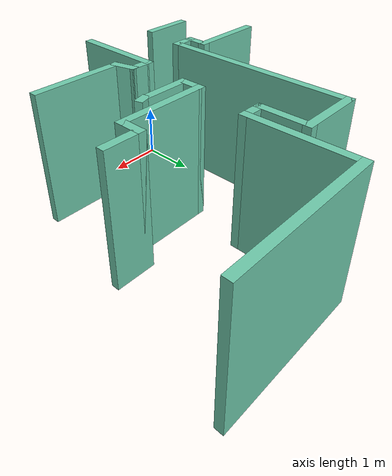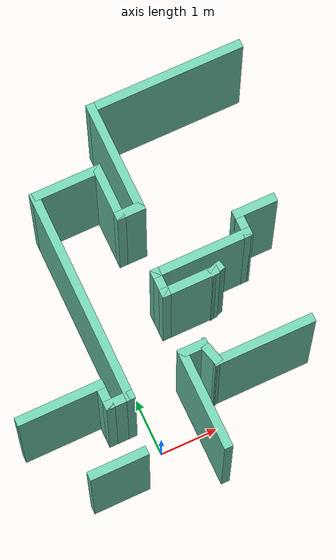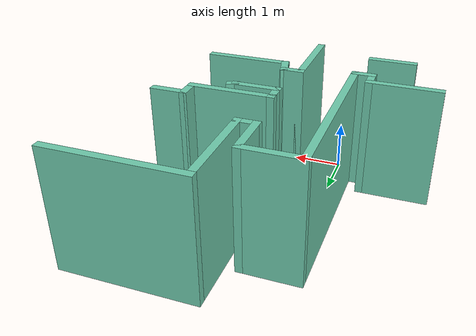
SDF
<sdf version="1.6">
 <model name="map_28">
  <link name="Wall_0">
   <pose>2.44979 5.13882 0 0 -0 3.14159</pose>
   <visual name="Wall_0_Visual">
    <pose>0 0 1.25 0 -0 0</pose>
    <geometry><box><size>2.75 0.15 2.5</size></box></geometry>
    <material>
     <script><uri>file://media/materials/scripts/gazebo.material</uri><name>Gazebo/Grey</name></script>
     <ambient>0.435294 0.796078 0.67451 1</ambient>
     <shader type="pixel"/>
    </material>
    <meta><layer>0</layer></meta>
   </visual>
   <collision name="Wall_0_Collision">
    <pose>0 0 1.25 0 -0 0</pose>
    <geometry><box><size>2.75 0.15 2.5</size></box></geometry>
    <surface>
     <friction>
      <ode><mu>1</mu><mu2>1</mu2><fdir1>0 0 0</fdir1><slip1>0</slip1><slip2>0</slip2></ode>
      <torsional>
       <coefficient>1</coefficient>
       <patch_radius>0</patch_radius>
       <surface_radius>0</surface_radius>
       <use_patch_radius>1</use_patch_radius>
       <ode><slip>0</slip></ode>
      </torsional>
     </friction>
     <bounce><restitution_coefficient>0</restitution_coefficient><threshold>1e+06</threshold></bounce>
     <contact>
      <collide_without_contact>0</collide_without_contact>
      <collide_without_contact_bitmask>1</collide_without_contact_bitmask>
      <collide_bitmask>1</collide_bitmask>
      <ode>
       <soft_cfm>0</soft_cfm>
       <soft_erp>0.2</soft_erp>
       <kp>1e+13</kp>
       <kd>1</kd>
       <max_vel>0.01</max_vel>
       <min_depth>0</min_depth>
      </ode>
      <bullet>
       <split_impulse>1</split_impulse>
       <split_impulse_penetration_threshold>-0.01</split_impulse_penetration_threshold>
       <soft_cfm>0</soft_cfm>
       <soft_erp>0.2</soft_erp>
       <kp>1e+13</kp>
       <kd>1</kd>
      </bullet>
     </contact>
    </surface>
   </collision>
  </link>
  <link name="Wall_1">
   <pose>1.14979 4.21382 0 0 0 -1.5708</pose>
   <visual name="Wall_1_Visual">
    <pose>0 0 1.25 0 -0 0</pose>
    <geometry><box><size>2 0.15 2.5</size></box></geometry>
    <material>
     <script><uri>file://media/materials/scripts/gazebo.material</uri><name>Gazebo/Grey</name></script>
     <ambient>0.435294 0.796078 0.67451 1</ambient>
     <shader type="pixel"/>
    </material>
    <meta><layer>0</layer></meta>
   </visual>
   <collision name="Wall_1_Collision">
    <pose>0 0 1.25 0 -0 0</pose>
    <geometry><box><size>2 0.15 2.5</size></box></geometry>
    <surface>
     <friction>
      <ode><mu>1</mu><mu2>1</mu2><fdir1>0 0 0</fdir1><slip1>0</slip1><slip2>0</slip2></ode>
      <torsional>
       <coefficient>1</coefficient>
       <patch_radius>0</patch_radius>
       <surface_radius>0</surface_radius>
       <use_patch_radius>1</use_patch_radius>
       <ode><slip>0</slip></ode>
      </torsional>
     </friction>
     <bounce><restitution_coefficient>0</restitution_coefficient><threshold>1e+06</threshold></bounce>
     <contact>
      <collide_without_contact>0</collide_without_contact>
      <collide_without_contact_bitmask>1</collide_without_contact_bitmask>
      <collide_bitmask>1</collide_bitmask>
      <ode>
       <soft_cfm>0</soft_cfm>
       <soft_erp>0.2</soft_erp>
       <kp>1e+13</kp>
       <kd>1</kd>
       <max_vel>0.01</max_vel>
       <min_depth>0</min_depth>
      </ode>
      <bullet>
       <split_impulse>1</split_impulse>
       <split_impulse_penetration_threshold>-0.01</split_impulse_penetration_threshold>
       <soft_cfm>0</soft_cfm>
       <soft_erp>0.2</soft_erp>
       <kp>1e+13</kp>
       <kd>1</kd>
      </bullet>
     </contact>
    </surface>
   </collision>
  </link>
  <link name="Wall_2">
   <pose>0.974795 3.28882 0 0 -0 3.14159</pose>
   <visual name="Wall_2_Visual">
    <pose>0 0 1.25 0 -0 0</pose>
    <geometry><box><size>0.5 0.15 2.5</size></box></geometry>
    <material>
     <script><uri>file://media/materials/scripts/gazebo.material</uri><name>Gazebo/Grey</name></script>
     <ambient>0.435294 0.796078 0.67451 1</ambient>
     <shader type="pixel"/>
    </material>
    <meta><layer>0</layer></meta>
   </visual>
   <collision name="Wall_2_Collision">
    <pose>0 0 1.25 0 -0 0</pose>
    <geometry><box><size>0.5 0.15 2.5</size></box></geometry>
    <surface>
     <friction>
      <ode><mu>1</mu><mu2>1</mu2><fdir1>0 0 0</fdir1><slip1>0</slip1><slip2>0</slip2></ode>
      <torsional>
       <coefficient>1</coefficient>
       <patch_radius>0</patch_radius>
       <surface_radius>0</surface_radius>
       <use_patch_radius>1</use_patch_radius>
       <ode><slip>0</slip></ode>
      </torsional>
     </friction>
     <bounce><restitution_coefficient>0</restitution_coefficient><threshold>1e+06</threshold></bounce>
     <contact>
      <collide_without_contact>0</collide_without_contact>
      <collide_without_contact_bitmask>1</collide_without_contact_bitmask>
      <collide_bitmask>1</collide_bitmask>
      <ode>
       <soft_cfm>0</soft_cfm>
       <soft_erp>0.2</soft_erp>
       <kp>1e+13</kp>
       <kd>1</kd>
       <max_vel>0.01</max_vel>
       <min_depth>0</min_depth>
      </ode>
      <bullet>
       <split_impulse>1</split_impulse>
       <split_impulse_penetration_threshold>-0.01</split_impulse_penetration_threshold>
       <soft_cfm>0</soft_cfm>
       <soft_erp>0.2</soft_erp>
       <kp>1e+13</kp>
       <kd>1</kd>
      </bullet>
     </contact>
    </surface>
   </collision>
  </link>
  <link name="Wall_25">
   <pose>-0.910501 -0.369695 0 0 -0 0</pose>
   <visual name="Wall_25_Visual">
    <pose>0 0 1.25 0 -0 0</pose>
    <geometry><box><size>1 0.15 2.5</size></box></geometry>
    <material>
     <script><uri>file://media/materials/scripts/gazebo.material</uri><name>Gazebo/Grey</name></script>
     <ambient>0.435294 0.796078 0.67451 1</ambient>
     <shader type="pixel"/>
    </material>
    <meta><layer>0</layer></meta>
   </visual>
   <collision name="Wall_25_Collision">
    <pose>0 0 1.25 0 -0 0</pose>
    <geometry><box><size>1 0.15 2.5</size></box></geometry>
    <surface>
     <friction>
      <ode><mu>1</mu><mu2>1</mu2><fdir1>0 0 0</fdir1><slip1>0</slip1><slip2>0</slip2></ode>
      <torsional>
       <coefficient>1</coefficient>
       <patch_radius>0</patch_radius>
       <surface_radius>0</surface_radius>
       <use_patch_radius>1</use_patch_radius>
       <ode><slip>0</slip></ode>
      </torsional>
     </friction>
     <bounce><restitution_coefficient>0</restitution_coefficient><threshold>1e+06</threshold></bounce>
     <contact>
      <collide_without_contact>0</collide_without_contact>
      <collide_without_contact_bitmask>1</collide_without_contact_bitmask>
      <collide_bitmask>1</collide_bitmask>
      <ode>
       <soft_cfm>0</soft_cfm>
       <soft_erp>0.2</soft_erp>
       <kp>1e+13</kp>
       <kd>1</kd>
       <max_vel>0.01</max_vel>
       <min_depth>0</min_depth>
      </ode>
      <bullet>
       <split_impulse>1</split_impulse>
       <split_impulse_penetration_threshold>-0.01</split_impulse_penetration_threshold>
       <soft_cfm>0</soft_cfm>
       <soft_erp>0.2</soft_erp>
       <kp>1e+13</kp>
       <kd>1</kd>
      </bullet>
     </contact>
    </surface>
   </collision>
  </link>
  <link name="Wall_3">
   <pose>0.799795 3.71382 0 0 -0 1.5708</pose>
   <visual name="Wall_3_Visual">
    <pose>0 0 1.25 0 -0 0</pose>
    <geometry><box><size>1 0.15 2.5</size></box></geometry>
    <material>
     <script><uri>file://media/materials/scripts/gazebo.material</uri><name>Gazebo/Grey</name></script>
     <ambient>0.435294 0.796078 0.67451 1</ambient>
     <shader type="pixel"/>
    </material>
    <meta><layer>0</layer></meta>
   </visual>
   <collision name="Wall_3_Collision">
    <pose>0 0 1.25 0 -0 0</pose>
    <geometry><box><size>1 0.15 2.5</size></box></geometry>
    <surface>
     <friction>
      <ode><mu>1</mu><mu2>1</mu2><fdir1>0 0 0</fdir1><slip1>0</slip1><slip2>0</slip2></ode>
      <torsional>
       <coefficient>1</coefficient>
       <patch_radius>0</patch_radius>
       <surface_radius>0</surface_radius>
       <use_patch_radius>1</use_patch_radius>
       <ode><slip>0</slip></ode>
      </torsional>
     </friction>
     <bounce><restitution_coefficient>0</restitution_coefficient><threshold>1e+06</threshold></bounce>
     <contact>
      <collide_without_contact>0</collide_without_contact>
      <collide_without_contact_bitmask>1</collide_without_contact_bitmask>
      <collide_bitmask>1</collide_bitmask>
      <ode>
       <soft_cfm>0</soft_cfm>
       <soft_erp>0.2</soft_erp>
       <kp>1e+13</kp>
       <kd>1</kd>
       <max_vel>0.01</max_vel>
       <min_depth>0</min_depth>
      </ode>
      <bullet>
       <split_impulse>1</split_impulse>
       <split_impulse_penetration_threshold>-0.01</split_impulse_penetration_threshold>
       <soft_cfm>0</soft_cfm>
       <soft_erp>0.2</soft_erp>
       <kp>1e+13</kp>
       <kd>1</kd>
      </bullet>
     </contact>
    </surface>
   </collision>
  </link>
  <link name="Wall_4">
   <pose>0.249795 4.13882 0 0 -0 3.14159</pose>
   <visual name="Wall_4_Visual">
    <pose>0 0 1.25 0 -0 0</pose>
    <geometry><box><size>1.25 0.15 2.5</size></box></geometry>
    <material>
     <script><uri>file://media/materials/scripts/gazebo.material</uri><name>Gazebo/Grey</name></script>
     <ambient>0.435294 0.796078 0.67451 1</ambient>
     <shader type="pixel"/>
    </material>
    <meta><layer>0</layer></meta>
   </visual>
   <collision name="Wall_4_Collision">
    <pose>0 0 1.25 0 -0 0</pose>
    <geometry><box><size>1.25 0.15 2.5</size></box></geometry>
    <surface>
     <friction>
      <ode><mu>1</mu><mu2>1</mu2><fdir1>0 0 0</fdir1><slip1>0</slip1><slip2>0</slip2></ode>
      <torsional>
       <coefficient>1</coefficient>
       <patch_radius>0</patch_radius>
       <surface_radius>0</surface_radius>
       <use_patch_radius>1</use_patch_radius>
       <ode><slip>0</slip></ode>
      </torsional>
     </friction>
     <bounce><restitution_coefficient>0</restitution_coefficient><threshold>1e+06</threshold></bounce>
     <contact>
      <collide_without_contact>0</collide_without_contact>
      <collide_without_contact_bitmask>1</collide_without_contact_bitmask>
      <collide_bitmask>1</collide_bitmask>
      <ode>
       <soft_cfm>0</soft_cfm>
       <soft_erp>0.2</soft_erp>
       <kp>1e+13</kp>
       <kd>1</kd>
       <max_vel>0.01</max_vel>
       <min_depth>0</min_depth>
      </ode>
      <bullet>
       <split_impulse>1</split_impulse>
       <split_impulse_penetration_threshold>-0.01</split_impulse_penetration_threshold>
       <soft_cfm>0</soft_cfm>
       <soft_erp>0.2</soft_erp>
       <kp>1e+13</kp>
       <kd>1</kd>
      </bullet>
     </contact>
    </surface>
   </collision>
  </link>
  <link name="Wall_5">
   <pose>-0.300205 2.33882 0 0 0 -1.5708</pose>
   <visual name="Wall_5_Visual">
    <pose>0 0 1.25 0 -0 0</pose>
    <geometry><box><size>3.75 0.15 2.5</size></box></geometry>
    <material>
     <script><uri>file://media/materials/scripts/gazebo.material</uri><name>Gazebo/Grey</name></script>
     <ambient>0.435294 0.796078 0.67451 1</ambient>
     <shader type="pixel"/>
    </material>
    <meta><layer>0</layer></meta>
   </visual>
   <collision name="Wall_5_Collision">
    <pose>0 0 1.25 0 -0 0</pose>
    <geometry><box><size>3.75 0.15 2.5</size></box></geometry>
    <surface>
     <friction>
      <ode><mu>1</mu><mu2>1</mu2><fdir1>0 0 0</fdir1><slip1>0</slip1><slip2>0</slip2></ode>
      <torsional>
       <coefficient>1</coefficient>
       <patch_radius>0</patch_radius>
       <surface_radius>0</surface_radius>
       <use_patch_radius>1</use_patch_radius>
       <ode><slip>0</slip></ode>
      </torsional>
     </friction>
     <bounce><restitution_coefficient>0</restitution_coefficient><threshold>1e+06</threshold></bounce>
     <contact>
      <collide_without_contact>0</collide_without_contact>
      <collide_without_contact_bitmask>1</collide_without_contact_bitmask>
      <collide_bitmask>1</collide_bitmask>
      <ode>
       <soft_cfm>0</soft_cfm>
       <soft_erp>0.2</soft_erp>
       <kp>1e+13</kp>
       <kd>1</kd>
       <max_vel>0.01</max_vel>
       <min_depth>0</min_depth>
      </ode>
      <bullet>
       <split_impulse>1</split_impulse>
       <split_impulse_penetration_threshold>-0.01</split_impulse_penetration_threshold>
       <soft_cfm>0</soft_cfm>
       <soft_erp>0.2</soft_erp>
       <kp>1e+13</kp>
       <kd>1</kd>
      </bullet>
     </contact>
    </surface>
   </collision>
  </link>
  <link name="Wall_6">
   <pose>-0.475205 0.538824 0 0 -0 3.14159</pose>
   <visual name="Wall_6_Visual">
    <pose>0 0 1.25 0 -0 0</pose>
    <geometry><box><size>0.5 0.15 2.5</size></box></geometry>
    <material>
     <script><uri>file://media/materials/scripts/gazebo.material</uri><name>Gazebo/Grey</name></script>
     <ambient>0.435294 0.796078 0.67451 1</ambient>
     <shader type="pixel"/>
    </material>
    <meta><layer>0</layer></meta>
   </visual>
   <collision name="Wall_6_Collision">
    <pose>0 0 1.25 0 -0 0</pose>
    <geometry><box><size>0.5 0.15 2.5</size></box></geometry>
    <surface>
     <friction>
      <ode><mu>1</mu><mu2>1</mu2><fdir1>0 0 0</fdir1><slip1>0</slip1><slip2>0</slip2></ode>
      <torsional>
       <coefficient>1</coefficient>
       <patch_radius>0</patch_radius>
       <surface_radius>0</surface_radius>
       <use_patch_radius>1</use_patch_radius>
       <ode><slip>0</slip></ode>
      </torsional>
     </friction>
     <bounce><restitution_coefficient>0</restitution_coefficient><threshold>1e+06</threshold></bounce>
     <contact>
      <collide_without_contact>0</collide_without_contact>
      <collide_without_contact_bitmask>1</collide_without_contact_bitmask>
      <collide_bitmask>1</collide_bitmask>
      <ode>
       <soft_cfm>0</soft_cfm>
       <soft_erp>0.2</soft_erp>
       <kp>1e+13</kp>
       <kd>1</kd>
       <max_vel>0.01</max_vel>
       <min_depth>0</min_depth>
      </ode>
      <bullet>
       <split_impulse>1</split_impulse>
       <split_impulse_penetration_threshold>-0.01</split_impulse_penetration_threshold>
       <soft_cfm>0</soft_cfm>
       <soft_erp>0.2</soft_erp>
       <kp>1e+13</kp>
       <kd>1</kd>
      </bullet>
     </contact>
    </surface>
   </collision>
  </link>
  <link name="Wall_7">
   <pose>-0.650205 0.713824 0 0 -0 1.5708</pose>
   <visual name="Wall_7_Visual">
    <pose>0 0 1.25 0 -0 0</pose>
    <geometry><box><size>0.5 0.15 2.5</size></box></geometry>
    <material>
     <script><uri>file://media/materials/scripts/gazebo.material</uri><name>Gazebo/Grey</name></script>
     <ambient>0.435294 0.796078 0.67451 1</ambient>
     <shader type="pixel"/>
    </material>
    <meta><layer>0</layer></meta>
   </visual>
   <collision name="Wall_7_Collision">
    <pose>0 0 1.25 0 -0 0</pose>
    <geometry><box><size>0.5 0.15 2.5</size></box></geometry>
    <surface>
     <friction>
      <ode><mu>1</mu><mu2>1</mu2><fdir1>0 0 0</fdir1><slip1>0</slip1><slip2>0</slip2></ode>
      <torsional>
       <coefficient>1</coefficient>
       <patch_radius>0</patch_radius>
       <surface_radius>0</surface_radius>
       <use_patch_radius>1</use_patch_radius>
       <ode><slip>0</slip></ode>
      </torsional>
     </friction>
     <bounce><restitution_coefficient>0</restitution_coefficient><threshold>1e+06</threshold></bounce>
     <contact>
      <collide_without_contact>0</collide_without_contact>
      <collide_without_contact_bitmask>1</collide_without_contact_bitmask>
      <collide_bitmask>1</collide_bitmask>
      <ode>
       <soft_cfm>0</soft_cfm>
       <soft_erp>0.2</soft_erp>
       <kp>1e+13</kp>
       <kd>1</kd>
       <max_vel>0.01</max_vel>
       <min_depth>0</min_depth>
      </ode>
      <bullet>
       <split_impulse>1</split_impulse>
       <split_impulse_penetration_threshold>-0.01</split_impulse_penetration_threshold>
       <soft_cfm>0</soft_cfm>
       <soft_erp>0.2</soft_erp>
       <kp>1e+13</kp>
       <kd>1</kd>
      </bullet>
     </contact>
    </surface>
   </collision>
  </link>
  <link name="Wall_70">
   <pose>0.748962 0.007254 0 0 -0 1.5708</pose>
   <visual name="Wall_70_Visual">
    <pose>0 0 1.25 0 -0 0</pose>
    <geometry><box><size>1.75 0.15 2.5</size></box></geometry>
    <material>
     <script><uri>file://media/materials/scripts/gazebo.material</uri><name>Gazebo/Grey</name></script>
     <ambient>0.435294 0.796078 0.67451 1</ambient>
     <shader type="pixel"/>
    </material>
    <meta><layer>0</layer></meta>
   </visual>
   <collision name="Wall_70_Collision">
    <pose>0 0 1.25 0 -0 0</pose>
    <geometry><box><size>1.75 0.15 2.5</size></box></geometry>
    <surface>
     <friction>
      <ode><mu>1</mu><mu2>1</mu2><fdir1>0 0 0</fdir1><slip1>0</slip1><slip2>0</slip2></ode>
      <torsional>
       <coefficient>1</coefficient>
       <patch_radius>0</patch_radius>
       <surface_radius>0</surface_radius>
       <use_patch_radius>1</use_patch_radius>
       <ode><slip>0</slip></ode>
      </torsional>
     </friction>
     <bounce><restitution_coefficient>0</restitution_coefficient><threshold>1e+06</threshold></bounce>
     <contact>
      <collide_without_contact>0</collide_without_contact>
      <collide_without_contact_bitmask>1</collide_without_contact_bitmask>
      <collide_bitmask>1</collide_bitmask>
      <ode>
       <soft_cfm>0</soft_cfm>
       <soft_erp>0.2</soft_erp>
       <kp>1e+13</kp>
       <kd>1</kd>
       <max_vel>0.01</max_vel>
       <min_depth>0</min_depth>
      </ode>
      <bullet>
       <split_impulse>1</split_impulse>
       <split_impulse_penetration_threshold>-0.01</split_impulse_penetration_threshold>
       <soft_cfm>0</soft_cfm>
       <soft_erp>0.2</soft_erp>
       <kp>1e+13</kp>
       <kd>1</kd>
      </bullet>
     </contact>
    </surface>
   </collision>
  </link>
  <link name="Wall_71">
   <pose>0.923962 0.807254 0 0 -0 0</pose>
   <visual name="Wall_71_Visual">
    <pose>0 0 1.25 0 -0 0</pose>
    <geometry><box><size>0.5 0.15 2.5</size></box></geometry>
    <material>
     <script><uri>file://media/materials/scripts/gazebo.material</uri><name>Gazebo/Grey</name></script>
     <ambient>0.435294 0.796078 0.67451 1</ambient>
     <shader type="pixel"/>
    </material>
    <meta><layer>0</layer></meta>
   </visual>
   <collision name="Wall_71_Collision">
    <pose>0 0 1.25 0 -0 0</pose>
    <geometry><box><size>0.5 0.15 2.5</size></box></geometry>
    <surface>
     <friction>
      <ode><mu>1</mu><mu2>1</mu2><fdir1>0 0 0</fdir1><slip1>0</slip1><slip2>0</slip2></ode>
      <torsional>
       <coefficient>1</coefficient>
       <patch_radius>0</patch_radius>
       <surface_radius>0</surface_radius>
       <use_patch_radius>1</use_patch_radius>
       <ode><slip>0</slip></ode>
      </torsional>
     </friction>
     <bounce><restitution_coefficient>0</restitution_coefficient><threshold>1e+06</threshold></bounce>
     <contact>
      <collide_without_contact>0</collide_without_contact>
      <collide_without_contact_bitmask>1</collide_without_contact_bitmask>
      <collide_bitmask>1</collide_bitmask>
      <ode>
       <soft_cfm>0</soft_cfm>
       <soft_erp>0.2</soft_erp>
       <kp>1e+13</kp>
       <kd>1</kd>
       <max_vel>0.01</max_vel>
       <min_depth>0</min_depth>
      </ode>
      <bullet>
       <split_impulse>1</split_impulse>
       <split_impulse_penetration_threshold>-0.01</split_impulse_penetration_threshold>
       <soft_cfm>0</soft_cfm>
       <soft_erp>0.2</soft_erp>
       <kp>1e+13</kp>
       <kd>1</kd>
      </bullet>
     </contact>
    </surface>
   </collision>
  </link>
  <link name="Wall_72">
   <pose>1.14426 0.638217 0 0 0 -1.309</pose>
   <visual name="Wall_72_Visual">
    <pose>0 0 1.25 0 -0 0</pose>
    <geometry><box><size>0.5 0.15 2.5</size></box></geometry>
    <material>
     <script><uri>file://media/materials/scripts/gazebo.material</uri><name>Gazebo/Grey</name></script>
     <ambient>0.435294 0.796078 0.67451 1</ambient>
     <shader type="pixel"/>
    </material>
    <meta><layer>0</layer></meta>
   </visual>
   <collision name="Wall_72_Collision">
    <pose>0 0 1.25 0 -0 0</pose>
    <geometry><box><size>0.5 0.15 2.5</size></box></geometry>
    <surface>
     <friction>
      <ode><mu>1</mu><mu2>1</mu2><fdir1>0 0 0</fdir1><slip1>0</slip1><slip2>0</slip2></ode>
      <torsional>
       <coefficient>1</coefficient>
       <patch_radius>0</patch_radius>
       <surface_radius>0</surface_radius>
       <use_patch_radius>1</use_patch_radius>
       <ode><slip>0</slip></ode>
      </torsional>
     </friction>
     <bounce><restitution_coefficient>0</restitution_coefficient><threshold>1e+06</threshold></bounce>
     <contact>
      <collide_without_contact>0</collide_without_contact>
      <collide_without_contact_bitmask>1</collide_without_contact_bitmask>
      <collide_bitmask>1</collide_bitmask>
      <ode>
       <soft_cfm>0</soft_cfm>
       <soft_erp>0.2</soft_erp>
       <kp>1e+13</kp>
       <kd>1</kd>
       <max_vel>0.01</max_vel>
       <min_depth>0</min_depth>
      </ode>
      <bullet>
       <split_impulse>1</split_impulse>
       <split_impulse_penetration_threshold>-0.01</split_impulse_penetration_threshold>
       <soft_cfm>0</soft_cfm>
       <soft_erp>0.2</soft_erp>
       <kp>1e+13</kp>
       <kd>1</kd>
      </bullet>
     </contact>
    </surface>
   </collision>
  </link>
  <link name="Wall_73">
   <pose>1.98955 0.46918 0 0 -0 0</pose>
   <visual name="Wall_73_Visual">
    <pose>0 0 1.25 0 -0 0</pose>
    <geometry><box><size>1.75 0.15 2.5</size></box></geometry>
    <material>
     <script><uri>file://media/materials/scripts/gazebo.material</uri><name>Gazebo/Grey</name></script>
     <ambient>0.435294 0.796078 0.67451 1</ambient>
     <shader type="pixel"/>
    </material>
    <meta><layer>0</layer></meta>
   </visual>
   <collision name="Wall_73_Collision">
    <pose>0 0 1.25 0 -0 0</pose>
    <geometry><box><size>1.75 0.15 2.5</size></box></geometry>
    <surface>
     <friction>
      <ode><mu>1</mu><mu2>1</mu2><fdir1>0 0 0</fdir1><slip1>0</slip1><slip2>0</slip2></ode>
      <torsional>
       <coefficient>1</coefficient>
       <patch_radius>0</patch_radius>
       <surface_radius>0</surface_radius>
       <use_patch_radius>1</use_patch_radius>
       <ode><slip>0</slip></ode>
      </torsional>
     </friction>
     <bounce><restitution_coefficient>0</restitution_coefficient><threshold>1e+06</threshold></bounce>
     <contact>
      <collide_without_contact>0</collide_without_contact>
      <collide_without_contact_bitmask>1</collide_without_contact_bitmask>
      <collide_bitmask>1</collide_bitmask>
      <ode>
       <soft_cfm>0</soft_cfm>
       <soft_erp>0.2</soft_erp>
       <kp>1e+13</kp>
       <kd>1</kd>
       <max_vel>0.01</max_vel>
       <min_depth>0</min_depth>
      </ode>
      <bullet>
       <split_impulse>1</split_impulse>
       <split_impulse_penetration_threshold>-0.01</split_impulse_penetration_threshold>
       <soft_cfm>0</soft_cfm>
       <soft_erp>0.2</soft_erp>
       <kp>1e+13</kp>
       <kd>1</kd>
      </bullet>
     </contact>
    </surface>
   </collision>
  </link>
  <link name="Wall_8">
   <pose>-1.3252 0.888824 0 0 -0 3.14159</pose>
   <visual name="Wall_8_Visual">
    <pose>0 0 1.25 0 -0 0</pose>
    <geometry><box><size>1.5 0.15 2.5</size></box></geometry>
    <material>
     <script><uri>file://media/materials/scripts/gazebo.material</uri><name>Gazebo/Grey</name></script>
     <ambient>0.435294 0.796078 0.67451 1</ambient>
     <shader type="pixel"/>
    </material>
    <meta><layer>0</layer></meta>
   </visual>
   <collision name="Wall_8_Collision">
    <pose>0 0 1.25 0 -0 0</pose>
    <geometry><box><size>1.5 0.15 2.5</size></box></geometry>
    <surface>
     <friction>
      <ode><mu>1</mu><mu2>1</mu2><fdir1>0 0 0</fdir1><slip1>0</slip1><slip2>0</slip2></ode>
      <torsional>
       <coefficient>1</coefficient>
       <patch_radius>0</patch_radius>
       <surface_radius>0</surface_radius>
       <use_patch_radius>1</use_patch_radius>
       <ode><slip>0</slip></ode>
      </torsional>
     </friction>
     <bounce><restitution_coefficient>0</restitution_coefficient><threshold>1e+06</threshold></bounce>
     <contact>
      <collide_without_contact>0</collide_without_contact>
      <collide_without_contact_bitmask>1</collide_without_contact_bitmask>
      <collide_bitmask>1</collide_bitmask>
      <ode>
       <soft_cfm>0</soft_cfm>
       <soft_erp>0.2</soft_erp>
       <kp>1e+13</kp>
       <kd>1</kd>
       <max_vel>0.01</max_vel>
       <min_depth>0</min_depth>
      </ode>
      <bullet>
       <split_impulse>1</split_impulse>
       <split_impulse_penetration_threshold>-0.01</split_impulse_penetration_threshold>
       <soft_cfm>0</soft_cfm>
       <soft_erp>0.2</soft_erp>
       <kp>1e+13</kp>
       <kd>1</kd>
      </bullet>
     </contact>
    </surface>
   </collision>
  </link>
  <link name="Wall_80">
   <pose>1.81125 1.8352 0 0 0 -2.87979</pose>
   <visual name="Wall_80_Visual">
    <pose>0 0 1.25 0 -0 0</pose>
    <geometry><box><size>0.25 0.15 2.5</size></box></geometry>
    <material>
     <script><uri>file://media/materials/scripts/gazebo.material</uri><name>Gazebo/Grey</name></script>
     <ambient>0.435294 0.796078 0.67451 1</ambient>
     <shader type="pixel"/>
    </material>
    <meta><layer>0</layer></meta>
   </visual>
   <collision name="Wall_80_Collision">
    <pose>0 0 1.25 0 -0 0</pose>
    <geometry><box><size>0.25 0.15 2.5</size></box></geometry>
    <surface>
     <friction>
      <ode><mu>1</mu><mu2>1</mu2><fdir1>0 0 0</fdir1><slip1>0</slip1><slip2>0</slip2></ode>
      <torsional>
       <coefficient>1</coefficient>
       <patch_radius>0</patch_radius>
       <surface_radius>0</surface_radius>
       <use_patch_radius>1</use_patch_radius>
       <ode><slip>0</slip></ode>
      </torsional>
     </friction>
     <bounce><restitution_coefficient>0</restitution_coefficient><threshold>1e+06</threshold></bounce>
     <contact>
      <collide_without_contact>0</collide_without_contact>
      <collide_without_contact_bitmask>1</collide_without_contact_bitmask>
      <collide_bitmask>1</collide_bitmask>
      <ode>
       <soft_cfm>0</soft_cfm>
       <soft_erp>0.2</soft_erp>
       <kp>1e+13</kp>
       <kd>1</kd>
       <max_vel>0.01</max_vel>
       <min_depth>0</min_depth>
      </ode>
      <bullet>
       <split_impulse>1</split_impulse>
       <split_impulse_penetration_threshold>-0.01</split_impulse_penetration_threshold>
       <soft_cfm>0</soft_cfm>
       <soft_erp>0.2</soft_erp>
       <kp>1e+13</kp>
       <kd>1</kd>
      </bullet>
     </contact>
    </surface>
   </collision>
  </link>
  <link name="Wall_81">
   <pose>1.33795 1.82226 0 0 -0 3.14159</pose>
   <visual name="Wall_81_Visual">
    <pose>0 0 1.25 0 -0 0</pose>
    <geometry><box><size>1 0.15 2.5</size></box></geometry>
    <material>
     <script><uri>file://media/materials/scripts/gazebo.material</uri><name>Gazebo/Grey</name></script>
     <ambient>0.435294 0.796078 0.67451 1</ambient>
     <shader type="pixel"/>
    </material>
    <meta><layer>0</layer></meta>
   </visual>
   <collision name="Wall_81_Collision">
    <pose>0 0 1.25 0 -0 0</pose>
    <geometry><box><size>1 0.15 2.5</size></box></geometry>
    <surface>
     <friction>
      <ode><mu>1</mu><mu2>1</mu2><fdir1>0 0 0</fdir1><slip1>0</slip1><slip2>0</slip2></ode>
      <torsional>
       <coefficient>1</coefficient>
       <patch_radius>0</patch_radius>
       <surface_radius>0</surface_radius>
       <use_patch_radius>1</use_patch_radius>
       <ode><slip>0</slip></ode>
      </torsional>
     </friction>
     <bounce><restitution_coefficient>0</restitution_coefficient><threshold>1e+06</threshold></bounce>
     <contact>
      <collide_without_contact>0</collide_without_contact>
      <collide_without_contact_bitmask>1</collide_without_contact_bitmask>
      <collide_bitmask>1</collide_bitmask>
      <ode>
       <soft_cfm>0</soft_cfm>
       <soft_erp>0.2</soft_erp>
       <kp>1e+13</kp>
       <kd>1</kd>
       <max_vel>0.01</max_vel>
       <min_depth>0</min_depth>
      </ode>
      <bullet>
       <split_impulse>1</split_impulse>
       <split_impulse_penetration_threshold>-0.01</split_impulse_penetration_threshold>
       <soft_cfm>0</soft_cfm>
       <soft_erp>0.2</soft_erp>
       <kp>1e+13</kp>
       <kd>1</kd>
      </bullet>
     </contact>
    </surface>
   </collision>
  </link>
  <link name="Wall_82">
   <pose>0.912952 1.99726 0 0 -0 1.5708</pose>
   <visual name="Wall_82_Visual">
    <pose>0 0 1.25 0 -0 0</pose>
    <geometry><box><size>0.5 0.15 2.5</size></box></geometry>
    <material>
     <script><uri>file://media/materials/scripts/gazebo.material</uri><name>Gazebo/Grey</name></script>
     <ambient>0.435294 0.796078 0.67451 1</ambient>
     <shader type="pixel"/>
    </material>
    <meta><layer>0</layer></meta>
   </visual>
   <collision name="Wall_82_Collision">
    <pose>0 0 1.25 0 -0 0</pose>
    <geometry><box><size>0.5 0.15 2.5</size></box></geometry>
    <surface>
     <friction>
      <ode><mu>1</mu><mu2>1</mu2><fdir1>0 0 0</fdir1><slip1>0</slip1><slip2>0</slip2></ode>
      <torsional>
       <coefficient>1</coefficient>
       <patch_radius>0</patch_radius>
       <surface_radius>0</surface_radius>
       <use_patch_radius>1</use_patch_radius>
       <ode><slip>0</slip></ode>
      </torsional>
     </friction>
     <bounce><restitution_coefficient>0</restitution_coefficient><threshold>1e+06</threshold></bounce>
     <contact>
      <collide_without_contact>0</collide_without_contact>
      <collide_without_contact_bitmask>1</collide_without_contact_bitmask>
      <collide_bitmask>1</collide_bitmask>
      <ode>
       <soft_cfm>0</soft_cfm>
       <soft_erp>0.2</soft_erp>
       <kp>1e+13</kp>
       <kd>1</kd>
       <max_vel>0.01</max_vel>
       <min_depth>0</min_depth>
      </ode>
      <bullet>
       <split_impulse>1</split_impulse>
       <split_impulse_penetration_threshold>-0.01</split_impulse_penetration_threshold>
       <soft_cfm>0</soft_cfm>
       <soft_erp>0.2</soft_erp>
       <kp>1e+13</kp>
       <kd>1</kd>
      </bullet>
     </contact>
    </surface>
   </collision>
  </link>
  <link name="Wall_92">
   <pose>1.71295 2.17226 0 0 -0 0</pose>
   <visual name="Wall_92_Visual">
    <pose>0 0 1.25 0 -0 0</pose>
    <geometry><box><size>1.75 0.15 2.5</size></box></geometry>
    <material>
     <script><uri>file://media/materials/scripts/gazebo.material</uri><name>Gazebo/Grey</name></script>
     <ambient>0.435294 0.796078 0.67451 1</ambient>
     <shader type="pixel"/>
    </material>
    <meta><layer>0</layer></meta>
   </visual>
   <collision name="Wall_92_Collision">
    <pose>0 0 1.25 0 -0 0</pose>
    <geometry><box><size>1.75 0.15 2.5</size></box></geometry>
    <surface>
     <friction>
      <ode><mu>1</mu><mu2>1</mu2><fdir1>0 0 0</fdir1><slip1>0</slip1><slip2>0</slip2></ode>
      <torsional>
       <coefficient>1</coefficient>
       <patch_radius>0</patch_radius>
       <surface_radius>0</surface_radius>
       <use_patch_radius>1</use_patch_radius>
       <ode><slip>0</slip></ode>
      </torsional>
     </friction>
     <bounce><restitution_coefficient>0</restitution_coefficient><threshold>1e+06</threshold></bounce>
     <contact>
      <collide_without_contact>0</collide_without_contact>
      <collide_without_contact_bitmask>1</collide_without_contact_bitmask>
      <collide_bitmask>1</collide_bitmask>
      <ode>
       <soft_cfm>0</soft_cfm>
       <soft_erp>0.2</soft_erp>
       <kp>1e+13</kp>
       <kd>1</kd>
       <max_vel>0.01</max_vel>
       <min_depth>0</min_depth>
      </ode>
      <bullet>
       <split_impulse>1</split_impulse>
       <split_impulse_penetration_threshold>-0.01</split_impulse_penetration_threshold>
       <soft_cfm>0</soft_cfm>
       <soft_erp>0.2</soft_erp>
       <kp>1e+13</kp>
       <kd>1</kd>
      </bullet>
     </contact>
    </surface>
   </collision>
  </link>
  <link name="Wall_93">
   <pose>2.51295 2.34726 0 0 -0 1.5708</pose>
   <visual name="Wall_93_Visual">
    <pose>0 0 1.25 0 -0 0</pose>
    <geometry><box><size>0.5 0.15 2.5</size></box></geometry>
    <material>
     <script><uri>file://media/materials/scripts/gazebo.material</uri><name>Gazebo/Grey</name></script>
     <ambient>0.435294 0.796078 0.67451 1</ambient>
     <shader type="pixel"/>
    </material>
    <meta><layer>0</layer></meta>
   </visual>
   <collision name="Wall_93_Collision">
    <pose>0 0 1.25 0 -0 0</pose>
    <geometry><box><size>0.5 0.15 2.5</size></box></geometry>
    <surface>
     <friction>
      <ode><mu>1</mu><mu2>1</mu2><fdir1>0 0 0</fdir1><slip1>0</slip1><slip2>0</slip2></ode>
      <torsional>
       <coefficient>1</coefficient>
       <patch_radius>0</patch_radius>
       <surface_radius>0</surface_radius>
       <use_patch_radius>1</use_patch_radius>
       <ode><slip>0</slip></ode>
      </torsional>
     </friction>
     <bounce><restitution_coefficient>0</restitution_coefficient><threshold>1e+06</threshold></bounce>
     <contact>
      <collide_without_contact>0</collide_without_contact>
      <collide_without_contact_bitmask>1</collide_without_contact_bitmask>
      <collide_bitmask>1</collide_bitmask>
      <ode>
       <soft_cfm>0</soft_cfm>
       <soft_erp>0.2</soft_erp>
       <kp>1e+13</kp>
       <kd>1</kd>
       <max_vel>0.01</max_vel>
       <min_depth>0</min_depth>
      </ode>
      <bullet>
       <split_impulse>1</split_impulse>
       <split_impulse_penetration_threshold>-0.01</split_impulse_penetration_threshold>
       <soft_cfm>0</soft_cfm>
       <soft_erp>0.2</soft_erp>
       <kp>1e+13</kp>
       <kd>1</kd>
      </bullet>
     </contact>
    </surface>
   </collision>
  </link>
  <link name="Wall_96">
   <pose>2.81295 2.52226 0 0 -0 0</pose>
   <visual name="Wall_96_Visual">
    <pose>0 0 1.25 0 -0 0</pose>
    <geometry><box><size>0.75 0.15 2.5</size></box></geometry>
    <material>
     <script><uri>file://media/materials/scripts/gazebo.material</uri><name>Gazebo/Grey</name></script>
     <ambient>0.435294 0.796078 0.67451 1</ambient>
     <shader type="pixel"/>
    </material>
    <meta><layer>0</layer></meta>
   </visual>
   <collision name="Wall_96_Collision">
    <pose>0 0 1.25 0 -0 0</pose>
    <geometry><box><size>0.75 0.15 2.5</size></box></geometry>
    <surface>
     <friction>
      <ode><mu>1</mu><mu2>1</mu2><fdir1>0 0 0</fdir1><slip1>0</slip1><slip2>0</slip2></ode>
      <torsional>
       <coefficient>1</coefficient>
       <patch_radius>0</patch_radius>
       <surface_radius>0</surface_radius>
       <use_patch_radius>1</use_patch_radius>
       <ode><slip>0</slip></ode>
      </torsional>
     </friction>
     <bounce><restitution_coefficient>0</restitution_coefficient><threshold>1e+06</threshold></bounce>
     <contact>
      <collide_without_contact>0</collide_without_contact>
      <collide_without_contact_bitmask>1</collide_without_contact_bitmask>
      <collide_bitmask>1</collide_bitmask>
      <ode>
       <soft_cfm>0</soft_cfm>
       <soft_erp>0.2</soft_erp>
       <kp>1e+13</kp>
       <kd>1</kd>
       <max_vel>0.01</max_vel>
       <min_depth>0</min_depth>
      </ode>
      <bullet>
       <split_impulse>1</split_impulse>
       <split_impulse_penetration_threshold>-0.01</split_impulse_penetration_threshold>
       <soft_cfm>0</soft_cfm>
       <soft_erp>0.2</soft_erp>
       <kp>1e+13</kp>
       <kd>1</kd>
      </bullet>
     </contact>
    </surface>
   </collision>
  </link>
  <static>1</static>
 </model>
</sdf>
